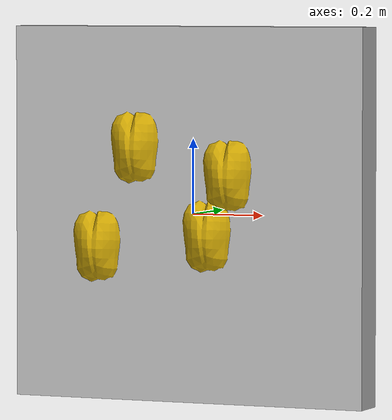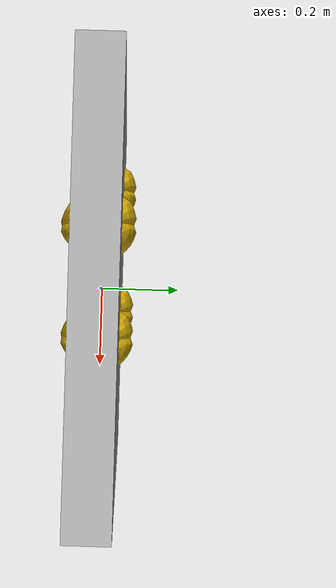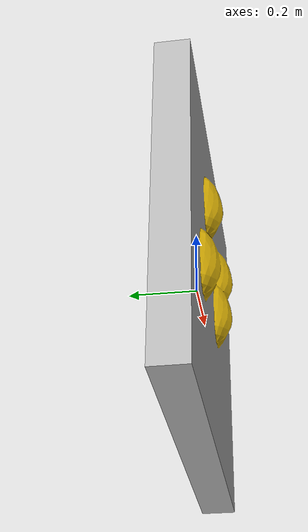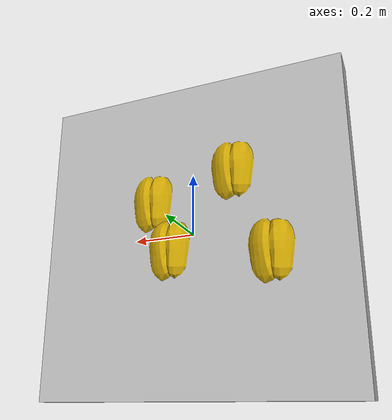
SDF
<?xml version='1.0'?>
<sdf version="1.6">
  <model name="pepper_2">
    <static>true</static>
    <link name="link">
      <collision name="collision">
        <geometry>
          <box>
            <size>1 1 1</size>
          </box>
        </geometry>
      </collision>
      <visual name="visual">
        <geometry>
          <mesh>
            <scale>1 1 1</scale>
            <uri>model://icuas24/pepper_2.dae</uri>
          </mesh>
        </geometry>
      </visual>
    </link>
  </model>
</sdf>
